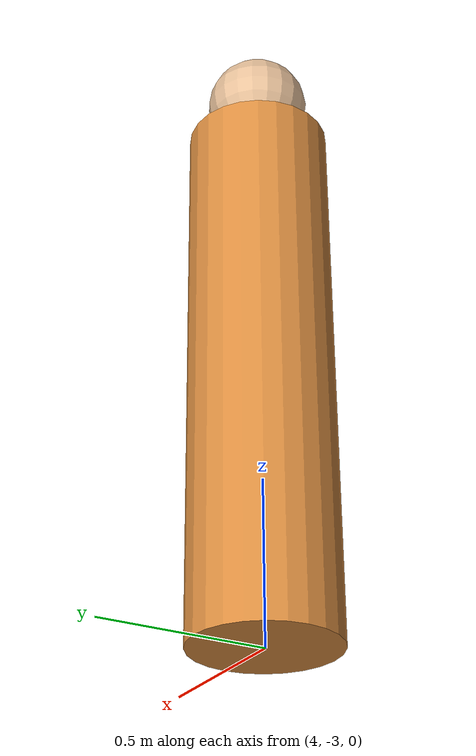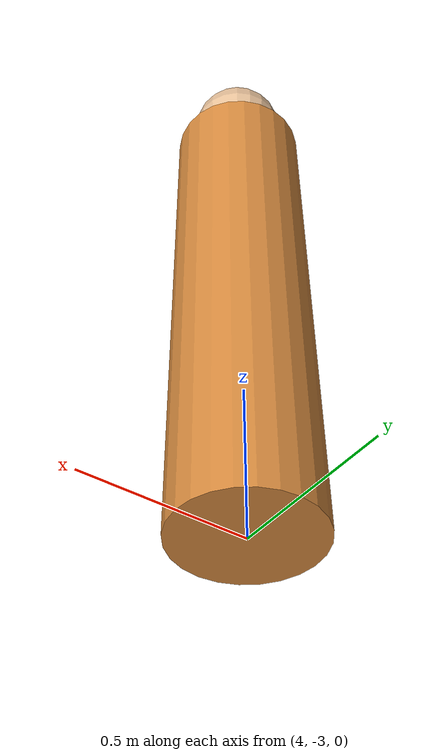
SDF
<?xml version="1.0"?>
<!--
  움직이는 보행자 (동적 장애물) — 충돌 있는 원통 + TrajectoryFollower 로 왕복.
  ★ Actor 는 충돌이 없어 LiDAR 가 못 봄 → 그래서 '충돌 있는 model'을 움직인다.
  왕복 경로: 휠체어 진행선(+x)을 가로질러 y= -3 ↔ +3 (동적 양보 시나리오)
-->
<sdf version="1.10">
  <model name="moving_pedestrian">
    <pose>4.0 -3.0 0.85 0 0 0</pose>
    <link name="body">
      <inertial>
        <!-- ★ 무게중심을 바닥 근처로 (링크중심 0.85 → COM 0.25m) → 안 넘어짐 -->
        <pose>0 0 -0.60 0 0 0</pose>
        <mass>12.0</mass>
        <!-- 넘어짐(roll/pitch) 저항 크게, 회전(yaw)은 작게 -->
        <inertia><ixx>10.0</ixx><iyy>10.0</iyy><izz>0.4</izz><ixy>0</ixy><ixz>0</ixz><iyz>0</iyz></inertia>
      </inertial>
      <collision name="collision">
        <geometry><cylinder><radius>0.22</radius><length>1.7</length></cylinder></geometry>
        <!-- 마찰 낮춰 TrajectoryFollower 힘으로 미끄러지듯 이동 -->
        <surface><friction><ode><mu>0.1</mu><mu2>0.1</mu2></ode></friction></surface>
      </collision>
      <visual name="visual">
        <geometry><cylinder><radius>0.22</radius><length>1.7</length></cylinder></geometry>
        <material><ambient>0.85 0.55 0.25 1</ambient><diffuse>0.85 0.55 0.25 1</diffuse></material>
      </visual>
      <!-- 머리 (시각용) -->
      <visual name="head"><pose>0 0 1.0 0 0 0</pose>
        <geometry><sphere><radius>0.16</radius></sphere></geometry>
        <material><ambient>0.9 0.75 0.6 1</ambient><diffuse>0.9 0.75 0.6 1</diffuse></material></visual>
    </link>

    <!-- 넘어지지 않게 z·roll·pitch 고정하는 대신, 낮은 무게중심 + 큰 관성으로 안정 -->
    <plugin filename="gz-sim-trajectory-follower-system"
            name="gz::sim::systems::TrajectoryFollower">
      <link_name>body</link_name>
      <loop>true</loop>
      <force>28</force>                  <!-- 이동력 (속도는 힘/질량/마찰로 결정 → 튜닝) -->
      <range_tolerance>0.3</range_tolerance>
      <waypoints>
        <waypoint>4.0 -3.0</waypoint>
        <waypoint>4.0  3.0</waypoint>
      </waypoints>
    </plugin>
  </model>
</sdf>
